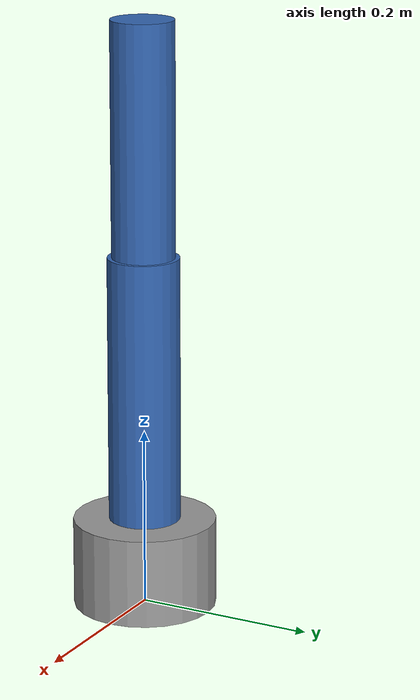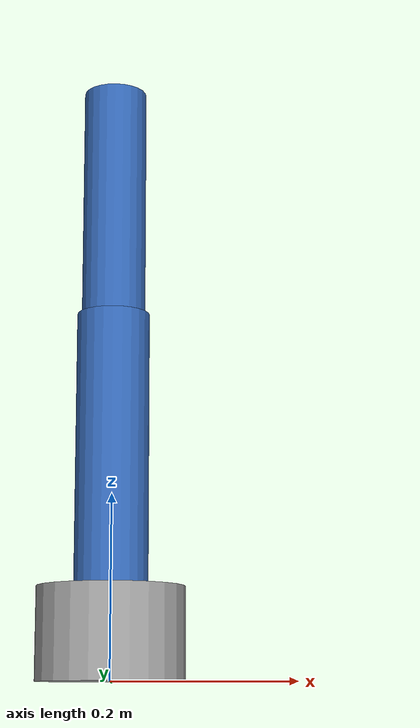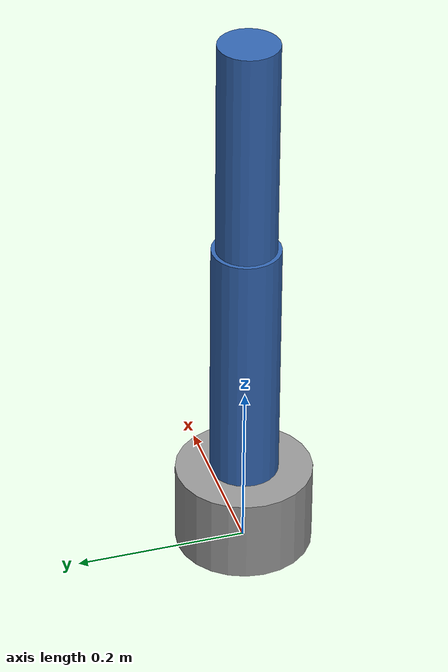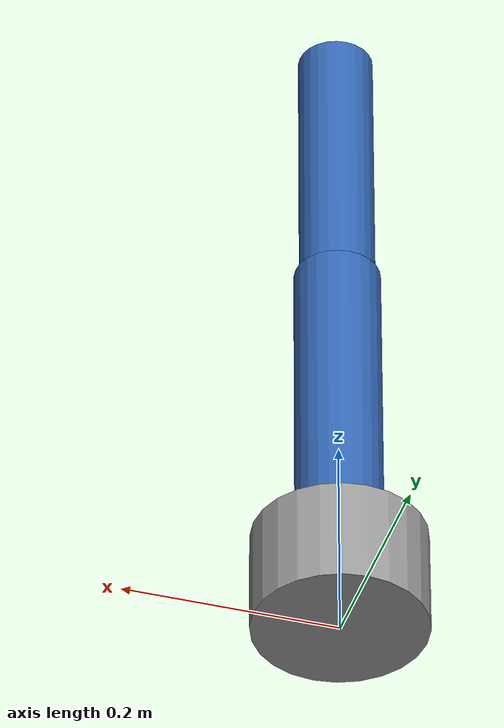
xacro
<?xml version="1.0"?>
<!-- Liste 19 - Xacro özellikleri ve makrolarıyla temel kol modeli.
     İki dönel eklemli bir kol ve ucunda bir kamera (gövde + optik çerçeve). -->
<robot name="mini_arm" xmlns:xacro="http://www.ros.org/wiki/xacro">

  <material name="grey"><color rgba="0.6 0.6 0.6 1"/></material>
  <material name="blue"><color rgba="0.2 0.4 0.7 1"/></material>

  <!-- Boyutlar tek yerde tanımlanır; değiştirilince tüm model güncellenir [m] -->
  <xacro:property name="base_length" value="0.10"/>
  <xacro:property name="arm1_length" value="0.30"/>
  <xacro:property name="arm2_length" value="0.26"/>

  <!-- Tabanı orijinde duran dik bir silindir bağlantısı üreten makro -->
  <xacro:macro name="cylinder_link" params="name length radius color">
    <link name="${name}">
      <visual>
        <origin xyz="0 0 ${length/2}"/>
        <geometry><cylinder length="${length}" radius="${radius}"/></geometry>
        <material name="${color}"/>
      </visual>
    </link>
  </xacro:macro>

  <xacro:cylinder_link name="base_link" length="${base_length}" radius="0.08"  color="grey"/>
  <xacro:cylinder_link name="link1"     length="${arm1_length}" radius="0.04"  color="blue"/>
  <xacro:cylinder_link name="link2"     length="${arm2_length}" radius="0.035" color="blue"/>

  <joint name="joint1" type="revolute">
    <parent link="base_link"/>  <child link="link1"/>
    <origin xyz="0 0 ${base_length}"/>
    <axis xyz="0 0 1"/>
    <limit lower="${-pi}" upper="${pi}" effort="100" velocity="2"/>
  </joint>

  <joint name="joint2" type="revolute">
    <parent link="link1"/>  <child link="link2"/>
    <origin xyz="0 0 ${arm1_length}"/>
    <axis xyz="0 1 0"/>
    <limit lower="${-pi}" upper="${pi}" effort="100" velocity="2"/>
  </joint>

  <!-- Kameranın gövde çerçevesi: x ileri, z yukarı (REP-103) -->
  <link name="camera_link"/>
  <joint name="camera_joint" type="fixed">
    <parent link="link2"/>  <child link="camera_link"/>
    <origin xyz="0.045 0 ${arm2_length}"/>
  </joint>

  <!-- Optik çerçeve: z ileri (bakış yönü), x sağa, y aşağı.
       Görüntüden hesaplanan noktalar bu çerçevede ifade edilir. -->
  <link name="camera_optical_frame"/>
  <joint name="camera_optical_joint" type="fixed">
    <parent link="camera_link"/>  <child link="camera_optical_frame"/>
    <origin xyz="0 0 0" rpy="${-pi/2} 0 ${-pi/2}"/>
  </joint>
</robot>
